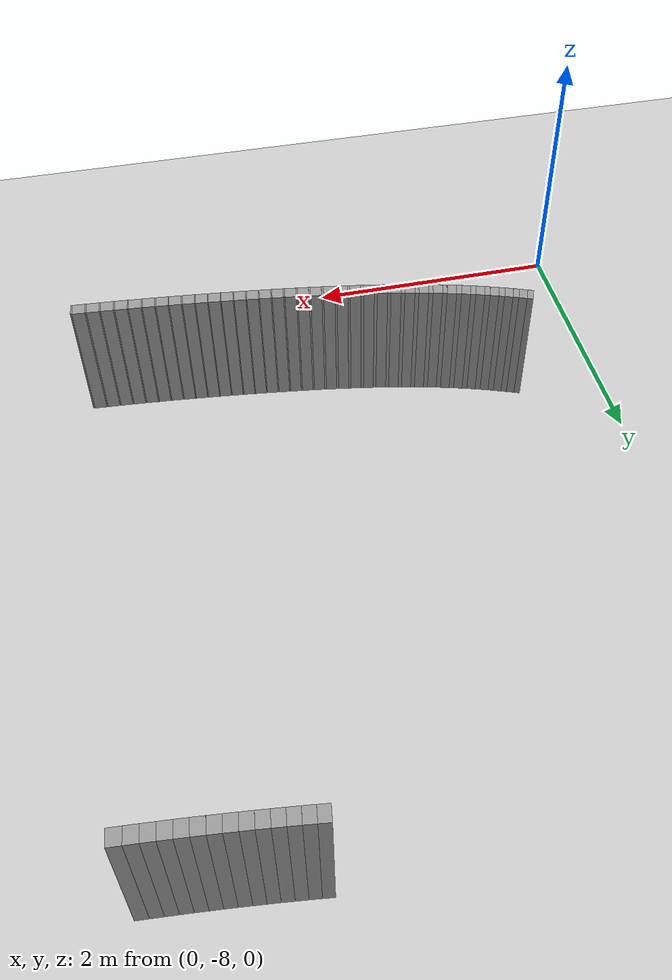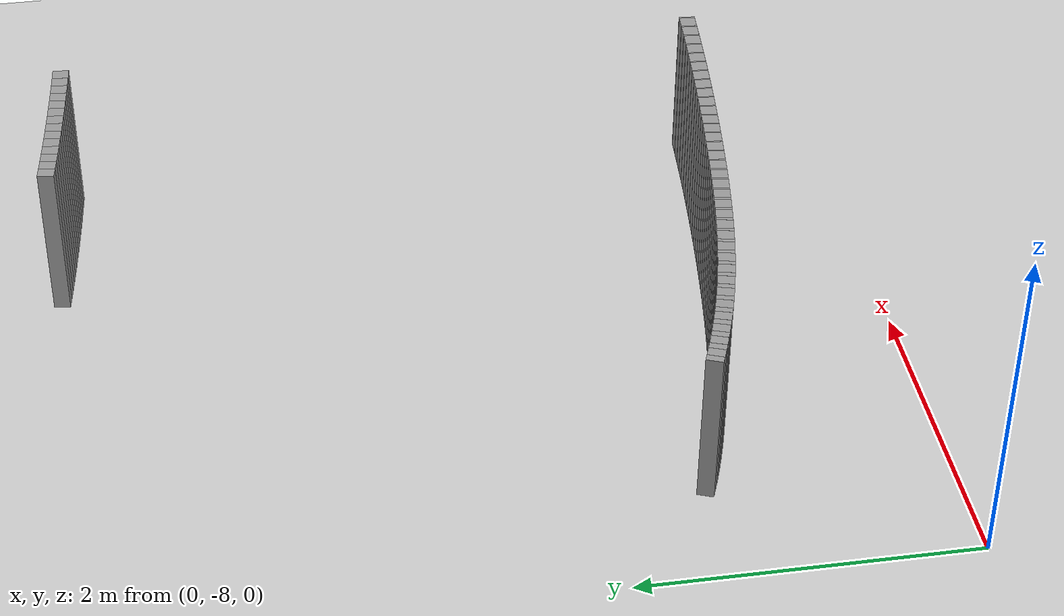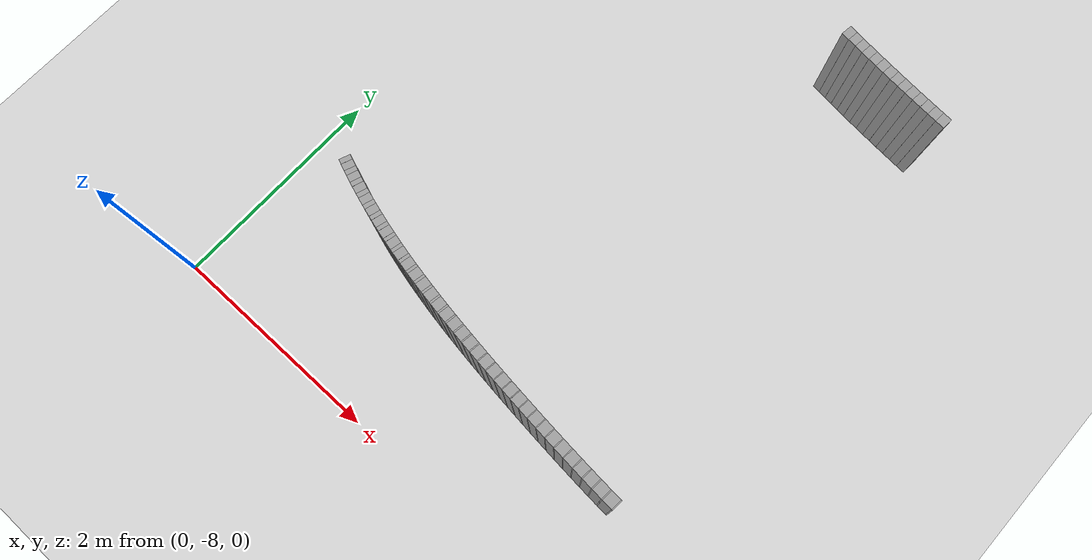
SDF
<sdf version="1.6">
 <world name="default">
  <include><uri>model://ground_plane</uri></include>
  <include><uri>model://sun</uri></include>
  <model name="wall_653_outward">
   <static>true</static>
   <link name="link">
    <collision name="collision">
     <geometry><box><size>0.010442473071604817 0.1 1.0</size></box></geometry>
    </collision>
    <visual name="visual">
     <geometry><box><size>0.010442473071604817 0.1 1.0</size></box></geometry>
     <material>
      <script><uri>file://media/materials/scripts/gazebo.material</uri><name>Gazebo/Gray</name></script>
     </material>
    </visual>
   </link>
   <pose>4.032838041866901 -7.122460427652382 0.5 0 0 3.0793379252012874</pose>
  </model>
  <model name="wall_654_outward">
   <static>true</static>
   <link name="link">
    <collision name="collision">
     <geometry><box><size>0.09457384258236233 0.1 1.0</size></box></geometry>
    </collision>
    <visual name="visual">
     <geometry><box><size>0.09457384258236233 0.1 1.0</size></box></geometry>
     <material>
      <script><uri>file://media/materials/scripts/gazebo.material</uri><name>Gazebo/Gray</name></script>
     </material>
    </visual>
   </link>
   <pose>3.9804394439247313 -7.119070458714933 0.5 0 0 3.0767273039680267</pose>
  </model>
  <model name="wall_655_outward">
   <static>true</static>
   <link name="link">
    <collision name="collision">
     <geometry><box><size>0.01002110656295349 0.1 1.0</size></box></geometry>
    </collision>
    <visual name="visual">
     <geometry><box><size>0.01002110656295349 0.1 1.0</size></box></geometry>
     <material>
      <script><uri>file://media/materials/scripts/gazebo.material</uri><name>Gazebo/Gray</name></script>
     </material>
    </visual>
   </link>
   <pose>3.928252781311886 -7.1156680176918385 0.5 0 0 3.0742220247066396</pose>
  </model>
  <model name="wall_656_outward">
   <static>true</static>
   <link name="link">
    <collision name="collision">
     <geometry><box><size>0.09392158900422469 0.1 1.0</size></box></geometry>
    </collision>
    <visual name="visual">
     <geometry><box><size>0.09392158900422469 0.1 1.0</size></box></geometry>
     <material>
      <script><uri>file://media/materials/scripts/gazebo.material</uri><name>Gazebo/Gray</name></script>
     </material>
    </visual>
   </link>
   <pose>3.876407399927721 -7.112051950389624 0.5 0 0 3.0717167454451535</pose>
  </model>
  <model name="wall_657_outward">
   <static>true</static>
   <link name="link">
    <collision name="collision">
     <geometry><box><size>0.009635117961015629 0.1 1.0</size></box></geometry>
    </collision>
    <visual name="visual">
     <geometry><box><size>0.009635117961015629 0.1 1.0</size></box></geometry>
     <material>
      <script><uri>file://media/materials/scripts/gazebo.material</uri><name>Gazebo/Gray</name></script>
     </material>
    </visual>
   </link>
   <pose>3.824756226768604 -7.108425259338109 0.5 0 0 3.0693079636255254</pose>
  </model>
  <model name="wall_658_outward">
   <static>true</static>
   <link name="link">
    <collision name="collision">
     <geometry><box><size>0.09324955963267284 0.1 1.0</size></box></geometry>
    </collision>
    <visual name="visual">
     <geometry><box><size>0.09324955963267284 0.1 1.0</size></box></geometry>
     <material>
      <script><uri>file://media/materials/scripts/gazebo.material</uri><name>Gazebo/Gray</name></script>
     </material>
    </visual>
   </link>
   <pose>3.77345647058897 -7.104597997455654 0.5 0 0 3.066899181805878</pose>
  </model>
  <model name="wall_659_outward">
   <static>true</static>
   <link name="link">
    <collision name="collision">
     <geometry><box><size>0.0092740077601503 0.1 1.0</size></box></geometry>
    </collision>
    <visual name="visual">
     <geometry><box><size>0.0092740077601503 0.1 1.0</size></box></geometry>
     <material>
      <script><uri>file://media/materials/scripts/gazebo.material</uri><name>Gazebo/Gray</name></script>
     </material>
    </visual>
   </link>
   <pose>3.7223384328117346 -7.100761916203569 0.5 0 0 3.0645806777886158</pose>
  </model>
  <model name="wall_660_outward">
   <static>true</static>
   <link name="link">
    <collision name="collision">
     <geometry><box><size>0.09255938303456822 0.1 1.0</size></box></geometry>
    </collision>
    <visual name="visual">
     <geometry><box><size>0.09255938303456822 0.1 1.0</size></box></geometry>
     <material>
      <script><uri>file://media/materials/scripts/gazebo.material</uri><name>Gazebo/Gray</name></script>
     </material>
    </visual>
   </link>
   <pose>3.671581031507449 -7.096737623786938 0.5 0 0 3.0622621737714617</pose>
  </model>
  <model name="wall_661_outward">
   <static>true</static>
   <link name="link">
    <collision name="collision">
     <geometry><box><size>0.008964394861757652 0.1 1.0</size></box></geometry>
    </collision>
    <visual name="visual">
     <geometry><box><size>0.008964394861757652 0.1 1.0</size></box></geometry>
     <material>
      <script><uri>file://media/materials/scripts/gazebo.material</uri><name>Gazebo/Gray</name></script>
     </material>
    </visual>
   </link>
   <pose>3.6209795966036777 -7.092704868721475 0.5 0 0 3.060021073180088</pose>
  </model>
  <model name="wall_662_outward">
   <static>true</static>
   <link name="link">
    <collision name="collision">
     <geometry><box><size>0.0918546644588078 0.1 1.0</size></box></geometry>
    </collision>
    <visual name="visual">
     <geometry><box><size>0.0918546644588078 0.1 1.0</size></box></geometry>
     <material>
      <script><uri>file://media/materials/scripts/gazebo.material</uri><name>Gazebo/Gray</name></script>
     </material>
    </visual>
   </link>
   <pose>3.5707461861454326 -7.088494866299903 0.5 0 0 3.057779972588584</pose>
  </model>
  <model name="wall_663_outward">
   <static>true</static>
   <link name="link">
    <collision name="collision">
     <geometry><box><size>0.00863821326469259 0.1 1.0</size></box></geometry>
    </collision>
    <visual name="visual">
     <geometry><box><size>0.00863821326469259 0.1 1.0</size></box></geometry>
     <material>
      <script><uri>file://media/materials/scripts/gazebo.material</uri><name>Gazebo/Gray</name></script>
     </material>
    </visual>
   </link>
   <pose>3.5206769145711228 -7.084279212472166 0.5 0 0 3.055620417593754</pose>
  </model>
  <model name="wall_664_outward">
   <static>true</static>
   <link name="link">
    <collision name="collision">
     <geometry><box><size>0.09114164450806461 0.1 1.0</size></box></geometry>
    </collision>
    <visual name="visual">
     <geometry><box><size>0.09114164450806461 0.1 1.0</size></box></geometry>
     <material>
      <script><uri>file://media/materials/scripts/gazebo.material</uri><name>Gazebo/Gray</name></script>
     </material>
    </visual>
   </link>
   <pose>3.470979802209799 -7.079897305432452 0.5 0 0 3.0534608625990822</pose>
  </model>
  <model name="wall_665_outward">
   <static>true</static>
   <link name="link">
    <collision name="collision">
     <geometry><box><size>0.008350675729254823 0.1 1.0</size></box></geometry>
    </collision>
    <visual name="visual">
     <geometry><box><size>0.008350675729254823 0.1 1.0</size></box></geometry>
     <material>
      <script><uri>file://media/materials/scripts/gazebo.material</uri><name>Gazebo/Gray</name></script>
     </material>
    </visual>
   </link>
   <pose>3.4214274878652002 -7.075510078476449 0.5 0 0 3.0513731921503187</pose>
  </model>
  <model name="wall_666_outward">
   <static>true</static>
   <link name="link">
    <collision name="collision">
     <geometry><box><size>0.09043049631183414 0.1 1.0</size></box></geometry>
    </collision>
    <visual name="visual">
     <geometry><box><size>0.09043049631183414 0.1 1.0</size></box></geometry>
     <material>
      <script><uri>file://media/materials/scripts/gazebo.material</uri><name>Gazebo/Gray</name></script>
     </material>
    </visual>
   </link>
   <pose>3.3722463769421203 -7.070966127220861 0.5 0 0 3.0492855217015102</pose>
  </model>
  <model name="wall_667_outward">
   <static>true</static>
   <link name="link">
    <collision name="collision">
     <geometry><box><size>0.00808149350482575 0.1 1.0</size></box></geometry>
    </collision>
    <visual name="visual">
     <geometry><box><size>0.00808149350482575 0.1 1.0</size></box></geometry>
     <material>
      <script><uri>file://media/materials/scripts/gazebo.material</uri><name>Gazebo/Gray</name></script>
     </material>
    </visual>
   </link>
   <pose>3.3232008392735195 -7.066417773295749 0.5 0 0 3.047265146950805</pose>
  </model>
  <model name="wall_668_outward">
   <static>true</static>
   <link name="link">
    <collision name="collision">
     <geometry><box><size>0.08973105101015012 0.1 1.0</size></box></geometry>
    </collision>
    <visual name="visual">
     <geometry><box><size>0.08973105101015012 0.1 1.0</size></box></geometry>
     <material>
      <script><uri>file://media/materials/scripts/gazebo.material</uri><name>Gazebo/Gray</name></script>
     </material>
    </visual>
   </link>
   <pose>3.2745206106957854 -7.061721171148216 0.5 0 0 3.0452447722000997</pose>
  </model>
  <model name="wall_669_outward">
   <static>true</static>
   <link name="link">
    <collision name="collision">
     <geometry><box><size>0.007814410871649536 0.1 1.0</size></box></geometry>
    </collision>
    <visual name="visual">
     <geometry><box><size>0.007814410871649536 0.1 1.0</size></box></geometry>
     <material>
      <script><uri>file://media/materials/scripts/gazebo.material</uri><name>Gazebo/Gray</name></script>
     </material>
    </visual>
   </link>
   <pose>3.225974822948856 -7.057021691770269 0.5 0 0 3.0432911682394943</pose>
  </model>
  <model name="wall_670_outward">
   <static>true</static>
   <link name="link">
    <collision name="collision">
     <geometry><box><size>0.08905357893375238 0.1 1.0</size></box></geometry>
    </collision>
    <visual name="visual">
     <geometry><box><size>0.08905357893375238 0.1 1.0</size></box></geometry>
     <material>
      <script><uri>file://media/materials/scripts/gazebo.material</uri><name>Gazebo/Gray</name></script>
     </material>
    </visual>
   </link>
   <pose>3.1777832747289194 -7.052181663008795 0.5 0 0 3.0413375642789204</pose>
  </model>
  <model name="wall_671_outward">
   <static>true</static>
   <link name="link">
    <collision name="collision">
     <geometry><box><size>0.0075883823760114774 0.1 1.0</size></box></geometry>
    </collision>
    <visual name="visual">
     <geometry><box><size>0.0075883823760114774 0.1 1.0</size></box></geometry>
     <material>
      <script><uri>file://media/materials/scripts/gazebo.material</uri><name>Gazebo/Gray</name></script>
     </material>
    </visual>
   </link>
   <pose>3.1297056570500126 -7.047338188868451 0.5 0 0 3.039440467546942</pose>
  </model>
  <model name="wall_672_outward">
   <static>true</static>
   <link name="link">
    <collision name="collision">
     <geometry><box><size>0.08840876499954922 0.1 1.0</size></box></geometry>
    </collision>
    <visual name="visual">
     <geometry><box><size>0.08840876499954922 0.1 1.0</size></box></geometry>
     <material>
      <script><uri>file://media/materials/scripts/gazebo.material</uri><name>Gazebo/Gray</name></script>
     </material>
    </visual>
   </link>
   <pose>3.081965930595816 -7.0423601379928495 0.5 0 0 3.0375433708150466</pose>
  </model>
  <model name="wall_673_outward">
   <static>true</static>
   <link name="link">
    <collision name="collision">
     <geometry><box><size>0.007422838619146693 0.1 1.0</size></box></geometry>
    </collision>
    <visual name="visual">
     <geometry><box><size>0.007422838619146693 0.1 1.0</size></box></geometry>
     <material>
      <script><uri>file://media/materials/scripts/gazebo.material</uri><name>Gazebo/Gray</name></script>
     </material>
    </visual>
   </link>
   <pose>3.034309990852888 -7.0373766748114175 0.5 0 0 3.0356876600951974</pose>
  </model>
  <model name="wall_674_outward">
   <static>true</static>
   <link name="link">
    <collision name="collision">
     <geometry><box><size>0.08780325307423642 0.1 1.0</size></box></geometry>
    </collision>
    <visual name="visual">
     <geometry><box><size>0.08780325307423642 0.1 1.0</size></box></geometry>
     <material>
      <script><uri>file://media/materials/scripts/gazebo.material</uri><name>Gazebo/Gray</name></script>
     </material>
    </visual>
   </link>
   <pose>2.9869723933341588 -7.032262631904586 0.5 0 0 3.0338319493753367</pose>
  </model>
  <model name="wall_675_outward">
   <static>true</static>
   <link name="link">
    <collision name="collision">
     <geometry><box><size>0.0073814233192602205 0.1 1.0</size></box></geometry>
    </collision>
    <visual name="visual">
     <geometry><box><size>0.0073814233192602205 0.1 1.0</size></box></geometry>
     <material>
      <script><uri>file://media/materials/scripts/gazebo.material</uri><name>Gazebo/Gray</name></script>
     </material>
    </visual>
   </link>
   <pose>2.9396568564936594 -7.027137197604203 0.5 0 0 3.031986592498095</pose>
  </model>
  <model name="wall_676_outward">
   <static>true</static>
   <link name="link">
    <collision name="collision">
     <geometry><box><size>0.08724009224771391 0.1 1.0</size></box></geometry>
    </collision>
    <visual name="visual">
     <geometry><box><size>0.08724009224771391 0.1 1.0</size></box></geometry>
     <material>
      <script><uri>file://media/materials/scripts/gazebo.material</uri><name>Gazebo/Gray</name></script>
     </material>
    </visual>
   </link>
   <pose>2.8926388768024 -7.021882024954554 0.5 0 0 3.030141235621006</pose>
  </model>
  <model name="wall_677_outward">
   <static>true</static>
   <link name="link">
    <collision name="collision">
     <geometry><box><size>0.007449028712975078 0.1 1.0</size></box></geometry>
    </collision>
    <visual name="visual">
     <geometry><box><size>0.007449028712975078 0.1 1.0</size></box></geometry>
     <material>
      <script><uri>file://media/materials/scripts/gazebo.material</uri><name>Gazebo/Gray</name></script>
     </material>
    </visual>
   </link>
   <pose>2.845588833226106 -7.016609431368691 0.5 0 0 3.028278977366409</pose>
  </model>
  <model name="wall_678_outward">
   <static>true</static>
   <link name="link">
    <collision name="collision">
     <geometry><box><size>0.08671592079062432 0.1 1.0</size></box></geometry>
    </collision>
    <visual name="visual">
     <geometry><box><size>0.08671592079062432 0.1 1.0</size></box></geometry>
     <material>
      <script><uri>file://media/materials/scripts/gazebo.material</uri><name>Gazebo/Gray</name></script>
     </material>
    </visual>
   </link>
   <pose>2.798817508915022 -7.01120553546829 0.5 0 0 3.026416719111745</pose>
  </model>
  <model name="wall_679_outward">
   <static>true</static>
   <link name="link">
    <collision name="collision">
     <geometry><box><size>0.007728097455072583 0.1 1.0</size></box></geometry>
    </collision>
    <visual name="visual">
     <geometry><box><size>0.007728097455072583 0.1 1.0</size></box></geometry>
     <material>
      <script><uri>file://media/materials/scripts/gazebo.material</uri><name>Gazebo/Gray</name></script>
     </material>
    </visual>
   </link>
   <pose>2.7519092304894404 -7.005771298136658 0.5 0 0 3.0244846935459777</pose>
  </model>
  <model name="wall_680_outward">
   <static>true</static>
   <link name="link">
    <collision name="collision">
     <geometry><box><size>0.08622376809790168 0.1 1.0</size></box></geometry>
    </collision>
    <visual name="visual">
     <geometry><box><size>0.08622376809790168 0.1 1.0</size></box></geometry>
     <material>
      <script><uri>file://media/materials/scripts/gazebo.material</uri><name>Gazebo/Gray</name></script>
     </material>
    </visual>
   </link>
   <pose>2.7052648620867563 -7.000199894838117 0.5 0 0 3.0225526679803045</pose>
  </model>
  <model name="wall_681_outward">
   <static>true</static>
   <link name="link">
    <collision name="collision">
     <geometry><box><size>0.008186937953801808 0.1 1.0</size></box></geometry>
    </collision>
    <visual name="visual">
     <geometry><box><size>0.008186937953801808 0.1 1.0</size></box></geometry>
     <material>
      <script><uri>file://media/materials/scripts/gazebo.material</uri><name>Gazebo/Gray</name></script>
     </material>
    </visual>
   </link>
   <pose>2.6583945799509863 -6.99458551441607 0.5 0 0 3.0205059320628345</pose>
  </model>
  <model name="wall_682_outward">
   <static>true</static>
   <link name="link">
    <collision name="collision">
     <geometry><box><size>0.0857474702592192 0.1 1.0</size></box></geometry>
    </collision>
    <visual name="visual">
     <geometry><box><size>0.0857474702592192 0.1 1.0</size></box></geometry>
     <material>
      <script><uri>file://media/materials/scripts/gazebo.material</uri><name>Gazebo/Gray</name></script>
     </material>
    </visual>
   </link>
   <pose>2.611781960485784 -6.988825199062417 0.5 0 0 3.0184591961453906</pose>
  </model>
  <model name="wall_683_outward">
   <static>true</static>
   <link name="link">
    <collision name="collision">
     <geometry><box><size>0.008891362308807455 0.1 1.0</size></box></geometry>
    </collision>
    <visual name="visual">
     <geometry><box><size>0.008891362308807455 0.1 1.0</size></box></geometry>
     <material>
      <script><uri>file://media/materials/scripts/gazebo.material</uri><name>Gazebo/Gray</name></script>
     </material>
    </visual>
   </link>
   <pose>2.5648220407303084 -6.983003502381481 0.5 0 0 3.0162363537376726</pose>
  </model>
  <model name="wall_684_outward">
   <static>true</static>
   <link name="link">
    <collision name="collision">
     <geometry><box><size>0.08527006249945727 0.1 1.0</size></box></geometry>
    </collision>
    <visual name="visual">
     <geometry><box><size>0.08527006249945727 0.1 1.0</size></box></geometry>
     <material>
      <script><uri>file://media/materials/scripts/gazebo.material</uri><name>Gazebo/Gray</name></script>
     </material>
    </visual>
   </link>
   <pose>2.5181227156169883 -6.977023069461514 0.5 0 0 3.0140135113299453</pose>
  </model>
  <model name="wall_685_outward">
   <static>true</static>
   <link name="link">
    <collision name="collision">
     <geometry><box><size>0.009847370159780173 0.1 1.0</size></box></geometry>
    </collision>
    <visual name="visual">
     <geometry><box><size>0.009847370159780173 0.1 1.0</size></box></geometry>
     <material>
      <script><uri>file://media/materials/scripts/gazebo.material</uri><name>Gazebo/Gray</name></script>
     </material>
    </visual>
   </link>
   <pose>2.470952074873609 -6.970959994456716 0.5 0 0 3.0115516663033213</pose>
  </model>
  <model name="wall_686_outward">
   <static>true</static>
   <link name="link">
    <collision name="collision">
     <geometry><box><size>0.08476732597819724 0.1 1.0</size></box></geometry>
    </collision>
    <visual name="visual">
     <geometry><box><size>0.08476732597819724 0.1 1.0</size></box></geometry>
     <material>
      <script><uri>file://media/materials/scripts/gazebo.material</uri><name>Gazebo/Gray</name></script>
     </material>
    </visual>
   </link>
   <pose>2.4240578205020262 -6.964721980070039 0.5 0 0 3.009089821276571</pose>
  </model>
  <model name="wall_687_outward">
   <static>true</static>
   <link name="link">
    <collision name="collision">
     <geometry><box><size>0.011056584605757895 0.1 1.0</size></box></geometry>
    </collision>
    <visual name="visual">
     <geometry><box><size>0.011056584605757895 0.1 1.0</size></box></geometry>
     <material>
      <script><uri>file://media/materials/scripts/gazebo.material</uri><name>Gazebo/Gray</name></script>
     </material>
    </visual>
   </link>
   <pose>2.3765678851091323 -6.9583769264032185 0.5 0 0 3.0063256716052096</pose>
  </model>
  <model name="wall_688_outward">
   <static>true</static>
   <link name="link">
    <collision name="collision">
     <geometry><box><size>0.08421311848578238 0.1 1.0</size></box></geometry>
    </collision>
    <visual name="visual">
     <geometry><box><size>0.08421311848578238 0.1 1.0</size></box></geometry>
     <material>
      <script><uri>file://media/materials/scripts/gazebo.material</uri><name>Gazebo/Gray</name></script>
     </material>
    </visual>
   </link>
   <pose>2.3293840156231367 -6.951837831391194 0.5 0 0 3.0035615219338445</pose>
  </model>
  <model name="wall_689_outward">
   <static>true</static>
   <link name="link">
    <collision name="collision">
     <geometry><box><size>0.012506841971058903 0.1 1.0</size></box></geometry>
    </collision>
    <visual name="visual">
     <geometry><box><size>0.012506841971058903 0.1 1.0</size></box></geometry>
     <material>
      <script><uri>file://media/materials/scripts/gazebo.material</uri><name>Gazebo/Gray</name></script>
     </material>
    </visual>
   </link>
   <pose>2.281486716517284 -6.945164462538162 0.5 0 0 3.000434806346381</pose>
  </model>
  <model name="wall_690_outward">
   <static>true</static>
   <link name="link">
    <collision name="collision">
     <geometry><box><size>0.08358217471317969 0.1 1.0</size></box></geometry>
    </collision>
    <visual name="visual">
     <geometry><box><size>0.08358217471317969 0.1 1.0</size></box></geometry>
     <material>
      <script><uri>file://media/materials/scripts/gazebo.material</uri><name>Gazebo/Gray</name></script>
     </material>
    </visual>
   </link>
   <pose>2.2339386562066554 -6.9382757625439515 0.5 0 0 2.997308090759042</pose>
  </model>
  <model name="wall_691_outward">
   <static>true</static>
   <link name="link">
    <collision name="collision">
     <geometry><box><size>0.014186319855319296 0.1 1.0</size></box></geometry>
    </collision>
    <visual name="visual">
     <geometry><box><size>0.014186319855319296 0.1 1.0</size></box></geometry>
     <material>
      <script><uri>file://media/materials/scripts/gazebo.material</uri><name>Gazebo/Gray</name></script>
     </material>
    </visual>
   </link>
   <pose>2.1855660250273328 -6.931222078630584 0.5 0 0 2.9937615033601856</pose>
  </model>
  <model name="wall_692_outward">
   <static>true</static>
   <link name="link">
    <collision name="collision">
     <geometry><box><size>0.08284945290775893 0.1 1.0</size></box></geometry>
    </collision>
    <visual name="visual">
     <geometry><box><size>0.08284945290775893 0.1 1.0</size></box></geometry>
     <material>
      <script><uri>file://media/materials/scripts/gazebo.material</uri><name>Gazebo/Gray</name></script>
     </material>
    </visual>
   </link>
   <pose>2.137599227416716 -6.923930444382112 0.5 0 0 2.990214915961378</pose>
  </model>
  <model name="wall_693_outward">
   <static>true</static>
   <link name="link">
    <collision name="collision">
     <geometry><box><size>0.01607227541756918 0.1 1.0</size></box></geometry>
    </collision>
    <visual name="visual">
     <geometry><box><size>0.01607227541756918 0.1 1.0</size></box></geometry>
     <material>
      <script><uri>file://media/materials/scripts/gazebo.material</uri><name>Gazebo/Gray</name></script>
     </material>
    </visual>
   </link>
   <pose>2.088708918613996 -6.916439822623894 0.5 0 0 2.986196836295065</pose>
  </model>
  <model name="wall_694_outward">
   <static>true</static>
   <link name="link">
    <collision name="collision">
     <geometry><box><size>0.08199376012825221 0.1 1.0</size></box></geometry>
    </collision>
    <visual name="visual">
     <geometry><box><size>0.08199376012825221 0.1 1.0</size></box></geometry>
     <material>
      <script><uri>file://media/materials/scripts/gazebo.material</uri><name>Gazebo/Gray</name></script>
     </material>
    </visual>
   </link>
   <pose>2.040292553833828 -6.908688233474896 0.5 0 0 2.982178756628704</pose>
  </model>
  <model name="wall_695_outward">
   <static>true</static>
   <link name="link">
    <collision name="collision">
     <geometry><box><size>0.018139371977615438 0.1 1.0</size></box></geometry>
    </collision>
    <visual name="visual">
     <geometry><box><size>0.018139371977615438 0.1 1.0</size></box></geometry>
     <material>
      <script><uri>file://media/materials/scripts/gazebo.material</uri><name>Gazebo/Gray</name></script>
     </material>
    </visual>
   </link>
   <pose>1.9908674282424101 -6.900700095395209 0.5 0 0 2.9776438980911553</pose>
  </model>
  <model name="wall_696_outward">
   <static>true</static>
   <link name="link">
    <collision name="collision">
     <geometry><box><size>0.08099918997314125 0.1 1.0</size></box></geometry>
    </collision>
    <visual name="visual">
     <geometry><box><size>0.08099918997314125 0.1 1.0</size></box></geometry>
     <material>
      <script><uri>file://media/materials/scripts/gazebo.material</uri><name>Gazebo/Gray</name></script>
     </material>
    </visual>
   </link>
   <pose>1.9419932344050583 -6.892428503088279 0.5 0 0 2.973109039553561</pose>
  </model>
  <model name="wall_697_outward">
   <static>true</static>
   <link name="link">
    <collision name="collision">
     <geometry><box><size>0.020367163637435945 0.1 1.0</size></box></geometry>
    </collision>
    <visual name="visual">
     <geometry><box><size>0.020367163637435945 0.1 1.0</size></box></geometry>
     <material>
      <script><uri>file://media/materials/scripts/gazebo.material</uri><name>Gazebo/Gray</name></script>
     </material>
    </visual>
   </link>
   <pose>1.8920365474844054 -6.883878465071046 0.5 0 0 2.968017226642029</pose>
  </model>
  <model name="wall_698_outward">
   <static>true</static>
   <link name="link">
    <collision name="collision">
     <geometry><box><size>0.07985759599289416 0.1 1.0</size></box></geometry>
    </collision>
    <visual name="visual">
     <geometry><box><size>0.07985759599289416 0.1 1.0</size></box></geometry>
     <material>
      <script><uri>file://media/materials/scripts/gazebo.material</uri><name>Gazebo/Gray</name></script>
     </material>
    </visual>
   </link>
   <pose>1.842712800223481 -6.875023634485855 0.5 0 0 2.9629254137305043</pose>
  </model>
  <model name="wall_699_outward">
   <static>true</static>
   <link name="link">
    <collision name="collision">
     <geometry><box><size>0.02271219170996822 0.1 1.0</size></box></geometry>
    </collision>
    <visual name="visual">
     <geometry><box><size>0.02271219170996822 0.1 1.0</size></box></geometry>
     <material>
      <script><uri>file://media/materials/scripts/gazebo.material</uri><name>Gazebo/Gray</name></script>
     </material>
    </visual>
   </link>
   <pose>1.7922559284322248 -6.86584595463639 0.5 0 0 2.9572473352922977</pose>
  </model>
  <model name="wall_700_outward">
   <static>true</static>
   <link name="link">
    <collision name="collision">
     <geometry><box><size>0.07856784290625185 0.1 1.0</size></box></geometry>
    </collision>
    <visual name="visual">
     <geometry><box><size>0.07856784290625185 0.1 1.0</size></box></geometry>
     <material>
      <script><uri>file://media/materials/scripts/gazebo.material</uri><name>Gazebo/Gray</name></script>
     </material>
    </visual>
   </link>
   <pose>1.742515441323595 -6.85634432781284 0.5 0 0 2.9515692568541145</pose>
  </model>
  <model name="wall_701_outward">
   <static>true</static>
   <link name="link">
    <collision name="collision">
     <geometry><box><size>0.02513546983631733 0.1 1.0</size></box></geometry>
    </collision>
    <visual name="visual">
     <geometry><box><size>0.02513546983631733 0.1 1.0</size></box></geometry>
     <material>
      <script><uri>file://media/materials/scripts/gazebo.material</uri><name>Gazebo/Gray</name></script>
     </material>
    </visual>
   </link>
   <pose>1.691612284719226 -6.846472984396366 0.5 0 0 2.9452853480391328</pose>
  </model>
  <model name="wall_702_outward">
   <static>true</static>
   <link name="link">
    <collision name="collision">
     <geometry><box><size>0.07713554896072333 0.1 1.0</size></box></geometry>
    </collision>
    <visual name="visual">
     <geometry><box><size>0.07713554896072333 0.1 1.0</size></box></geometry>
     <material>
      <script><uri>file://media/materials/scripts/gazebo.material</uri><name>Gazebo/Gray</name></script>
     </material>
    </visual>
   </link>
   <pose>1.641506926377209 -6.836261508158653 0.5 0 0 2.9390014392241484</pose>
  </model>
  <model name="wall_703_outward">
   <static>true</static>
   <link name="link">
    <collision name="collision">
     <geometry><box><size>0.02764324217999111 0.1 1.0</size></box></geometry>
    </collision>
    <visual name="visual">
     <geometry><box><size>0.02764324217999111 0.1 1.0</size></box></geometry>
     <material>
      <script><uri>file://media/materials/scripts/gazebo.material</uri><name>Gazebo/Gray</name></script>
     </material>
    </visual>
   </link>
   <pose>1.5902085153183427 -6.825626832246925 0.5 0 0 2.9320905736687157</pose>
  </model>
  <model name="wall_704_outward">
   <static>true</static>
   <link name="link">
    <collision name="collision">
     <geometry><box><size>0.07557600168136634 0.1 1.0</size></box></geometry>
    </collision>
    <visual name="visual">
     <geometry><box><size>0.07557600168136634 0.1 1.0</size></box></geometry>
     <material>
      <script><uri>file://media/materials/scripts/gazebo.material</uri><name>Gazebo/Gray</name></script>
     </material>
    </visual>
   </link>
   <pose>1.5397825528128013 -6.814638181890981 0.5 0 0 2.9251797081132915</pose>
  </model>
  <model name="wall_705_outward">
   <static>true</static>
   <link name="link">
    <collision name="collision">
     <geometry><box><size>0.030144198435219222 0.1 1.0</size></box></geometry>
    </collision>
    <visual name="visual">
     <geometry><box><size>0.030144198435219222 0.1 1.0</size></box></geometry>
     <material>
      <script><uri>file://media/materials/scripts/gazebo.material</uri><name>Gazebo/Gray</name></script>
     </material>
    </visual>
   </link>
   <pose>1.4881802766442167 -6.803176815203775 0.5 0 0 2.9176435871713746</pose>
  </model>
  <model name="wall_706_outward">
   <static>true</static>
   <link name="link">
    <collision name="collision">
     <geometry><box><size>0.07391020946208124 0.1 1.0</size></box></geometry>
    </collision>
    <visual name="visual">
     <geometry><box><size>0.07391020946208124 0.1 1.0</size></box></geometry>
     <material>
      <script><uri>file://media/materials/scripts/gazebo.material</uri><name>Gazebo/Gray</name></script>
     </material>
    </visual>
   </link>
   <pose>1.4375151659886518 -6.791351212476338 0.5 0 0 2.910107466229483</pose>
  </model>
  <model name="wall_707_outward">
   <static>true</static>
   <link name="link">
    <collision name="collision">
     <geometry><box><size>0.03261973655045599 0.1 1.0</size></box></geometry>
    </collision>
    <visual name="visual">
     <geometry><box><size>0.03261973655045599 0.1 1.0</size></box></geometry>
     <material>
      <script><uri>file://media/materials/scripts/gazebo.material</uri><name>Gazebo/Gray</name></script>
     </material>
    </visual>
   </link>
   <pose>1.3857019864149125 -6.779001650231635 0.5 0 0 2.901952441701305</pose>
  </model>
  <model name="wall_708_outward">
   <static>true</static>
   <link name="link">
    <collision name="collision">
     <geometry><box><size>0.07216457222702731 0.1 1.0</size></box></geometry>
    </collision>
    <visual name="visual">
     <geometry><box><size>0.07216457222702731 0.1 1.0</size></box></geometry>
     <material>
      <script><uri>file://media/materials/scripts/gazebo.material</uri><name>Gazebo/Gray</name></script>
     </material>
    </visual>
   </link>
   <pose>1.3348780262209312 -6.766280652855862 0.5 0 0 2.8937974171731176</pose>
  </model>
  <model name="wall_709_outward">
   <static>true</static>
   <link name="link">
    <collision name="collision">
     <geometry><box><size>0.03500077099886874 0.1 1.0</size></box></geometry>
    </collision>
    <visual name="visual">
     <geometry><box><size>0.03500077099886874 0.1 1.0</size></box></geometry>
     <material>
      <script><uri>file://media/materials/scripts/gazebo.material</uri><name>Gazebo/Gray</name></script>
     </material>
    </visual>
   </link>
   <pose>1.2829702164217602 -6.752990294309602 0.5 0 0 2.885047112758527</pose>
  </model>
  <model name="wall_710_outward">
   <static>true</static>
   <link name="link">
    <collision name="collision">
     <geometry><box><size>0.0703672879394116 0.1 1.0</size></box></geometry>
    </collision>
    <visual name="visual">
     <geometry><box><size>0.0703672879394116 0.1 1.0</size></box></geometry>
     <material>
      <script><uri>file://media/materials/scripts/gazebo.material</uri><name>Gazebo/Gray</name></script>
     </material>
    </visual>
   </link>
   <pose>1.232089835287498 -6.7393247671652095 0.5 0 0 2.8762968083439504</pose>
  </model>
  <model name="wall_711_outward">
   <static>true</static>
   <link name="link">
    <collision name="collision">
     <geometry><box><size>0.03725128857432373 0.1 1.0</size></box></geometry>
    </collision>
    <visual name="visual">
     <geometry><box><size>0.03725128857432373 0.1 1.0</size></box></geometry>
     <material>
      <script><uri>file://media/materials/scripts/gazebo.material</uri><name>Gazebo/Gray</name></script>
     </material>
    </visual>
   </link>
   <pose>1.180209325426832 -6.725049075825633 0.5 0 0 2.8669838515803256</pose>
  </model>
  <model name="wall_712_outward">
   <static>true</static>
   <link name="link">
    <collision name="collision">
     <geometry><box><size>0.06854987802838716 0.1 1.0</size></box></geometry>
    </collision>
    <visual name="visual">
     <geometry><box><size>0.06854987802838716 0.1 1.0</size></box></geometry>
     <material>
      <script><uri>file://media/materials/scripts/gazebo.material</uri><name>Gazebo/Gray</name></script>
     </material>
    </visual>
   </link>
   <pose>1.1293788427032245 -6.7103971690706565 0.5 0 0 2.8576708948167515</pose>
  </model>
  <model name="wall_713_outward">
   <static>true</static>
   <link name="link">
    <collision name="collision">
     <geometry><box><size>0.03929303305784504 0.1 1.0</size></box></geometry>
    </collision>
    <visual name="visual">
     <geometry><box><size>0.03929303305784504 0.1 1.0</size></box></geometry>
     <material>
      <script><uri>file://media/materials/scripts/gazebo.material</uri><name>Gazebo/Gray</name></script>
     </material>
    </visual>
   </link>
   <pose>1.0776711446736766 -6.695107553256211 0.5 0 0 2.8478474785605985</pose>
  </model>
  <model name="wall_714_outward">
   <static>true</static>
   <link name="link">
    <collision name="collision">
     <geometry><box><size>0.06674051853724301 0.1 1.0</size></box></geometry>
    </collision>
    <visual name="visual">
     <geometry><box><size>0.06674051853724301 0.1 1.0</size></box></geometry>
     <material>
      <script><uri>file://media/materials/scripts/gazebo.material</uri><name>Gazebo/Gray</name></script>
     </material>
    </visual>
   </link>
   <pose>1.0270217313350458 -6.67944383150979 0.5 0 0 2.8380240623044117</pose>
  </model>
  <model name="wall_715_outward">
   <static>true</static>
   <link name="link">
    <collision name="collision">
     <geometry><box><size>0.04112356711142242 0.1 1.0</size></box></geometry>
    </collision>
    <visual name="visual">
     <geometry><box><size>0.04112356711142242 0.1 1.0</size></box></geometry>
     <material>
      <script><uri>file://media/materials/scripts/gazebo.material</uri><name>Gazebo/Gray</name></script>
     </material>
    </visual>
   </link>
   <pose>0.9756199154035672 -6.663120656689804 0.5 0 0 2.8277429894084727</pose>
  </model>
  <model name="wall_716_outward">
   <static>true</static>
   <link name="link">
    <collision name="collision">
     <geometry><box><size>0.06496616691059841 0.1 1.0</size></box></geometry>
    </collision>
    <visual name="visual">
     <geometry><box><size>0.06496616691059841 0.1 1.0</size></box></geometry>
     <material>
      <script><uri>file://media/materials/scripts/gazebo.material</uri><name>Gazebo/Gray</name></script>
     </material>
    </visual>
   </link>
   <pose>0.9252709088030471 -6.646427398985857 0.5 0 0 2.8174619165125705</pose>
  </model>
  <model name="wall_717_outward">
   <static>true</static>
   <link name="link">
    <collision name="collision">
     <geometry><box><size>0.04269432952041096 0.1 1.0</size></box></geometry>
    </collision>
    <visual name="visual">
     <geometry><box><size>0.04269432952041096 0.1 1.0</size></box></geometry>
     <material>
      <script><uri>file://media/materials/scripts/gazebo.material</uri><name>Gazebo/Gray</name></script>
     </material>
    </visual>
   </link>
   <pose>0.8743174326739994 -6.629067678575147 0.5 0 0 2.806788131456797</pose>
  </model>
  <model name="wall_718_outward">
   <static>true</static>
   <link name="link">
    <collision name="collision">
     <geometry><box><size>0.06324919415047064 0.1 1.0</size></box></geometry>
    </collision>
    <visual name="visual">
     <geometry><box><size>0.06324919415047064 0.1 1.0</size></box></geometry>
     <material>
      <script><uri>file://media/materials/scripts/gazebo.material</uri><name>Gazebo/Gray</name></script>
     </material>
    </visual>
   </link>
   <pose>0.8243995657109804 -6.6113437626103915 0.5 0 0 2.796114346401009</pose>
  </model>
  <model name="wall_719_outward">
   <static>true</static>
   <link name="link">
    <collision name="collision">
     <geometry><box><size>0.0440323565682845 0.1 1.0</size></box></geometry>
    </collision>
    <visual name="visual">
     <geometry><box><size>0.0440323565682845 0.1 1.0</size></box></geometry>
     <material>
      <script><uri>file://media/materials/scripts/gazebo.material</uri><name>Gazebo/Gray</name></script>
     </material>
    </visual>
   </link>
   <pose>0.7740115598208195 -6.59295090338525 0.5 0 0 2.7851060349237273</pose>
  </model>
  <model name="wall_720_outward">
   <static>true</static>
   <link name="link">
    <collision name="collision">
     <geometry><box><size>0.06160806850910846 0.1 1.0</size></box></geometry>
    </collision>
    <visual name="visual">
     <geometry><box><size>0.06160806850910846 0.1 1.0</size></box></geometry>
     <material>
      <script><uri>file://media/materials/scripts/gazebo.material</uri><name>Gazebo/Gray</name></script>
     </material>
    </visual>
   </link>
   <pose>0.7246323090192842 -6.574200376484741 0.5 0 0 2.7740977234464457</pose>
  </model>
  <model name="wall_721_outward">
   <static>true</static>
   <link name="link">
    <collision name="collision">
     <geometry><box><size>0.04518292235060655 0.1 1.0</size></box></geometry>
    </collision>
    <visual name="visual">
     <geometry><box><size>0.04518292235060655 0.1 1.0</size></box></geometry>
     <material>
      <script><uri>file://media/materials/scripts/gazebo.material</uri><name>Gazebo/Gray</name></script>
     </material>
    </visual>
   </link>
   <pose>0.6748950436302436 -6.5547788789211845 0.5 0 0 2.7628017526346347</pose>
  </model>
  <model name="wall_275_inward">
   <static>true</static>
   <link name="link">
    <collision name="collision">
     <geometry><box><size>0.08344015800440929 0.1 1.0</size></box></geometry>
    </collision>
    <visual name="visual">
     <geometry><box><size>0.08344015800440929 0.1 1.0</size></box></geometry>
     <material>
      <script><uri>file://media/materials/scripts/gazebo.material</uri><name>Gazebo/Gray</name></script>
     </material>
    </visual>
   </link>
   <pose>3.988493060108791 -3.109311540193772 0.5 0 0 3.062262173771458</pose>
  </model>
  <model name="wall_276_inward">
   <static>true</static>
   <link name="link">
    <collision name="collision">
     <geometry><box><size>0.08305333906817627 0.1 1.0</size></box></geometry>
    </collision>
    <visual name="visual">
     <geometry><box><size>0.08305333906817627 0.1 1.0</size></box></geometry>
     <material>
      <script><uri>file://media/materials/scripts/gazebo.material</uri><name>Gazebo/Gray</name></script>
     </material>
    </visual>
   </link>
   <pose>3.905523289792421 -3.102528948542516 0.5 0 0 3.0577799725885826</pose>
  </model>
  <model name="wall_277_inward">
   <static>true</static>
   <link name="link">
    <collision name="collision">
     <geometry><box><size>0.08264718084066477 0.1 1.0</size></box></geometry>
    </collision>
    <visual name="visual">
     <geometry><box><size>0.08264718084066477 0.1 1.0</size></box></geometry>
     <material>
      <script><uri>file://media/materials/scripts/gazebo.material</uri><name>Gazebo/Gray</name></script>
     </material>
    </visual>
   </link>
   <pose>3.8229791785894234 -3.0954153511257454 0.5 0 0 3.0534608625990862</pose>
  </model>
  <model name="wall_278_inward">
   <static>true</static>
   <link name="link">
    <collision name="collision">
     <geometry><box><size>0.08221439434898599 0.1 1.0</size></box></geometry>
    </collision>
    <visual name="visual">
     <geometry><box><size>0.08221439434898599 0.1 1.0</size></box></geometry>
     <material>
      <script><uri>file://media/materials/scripts/gazebo.material</uri><name>Gazebo/Gray</name></script>
     </material>
    </visual>
   </link>
   <pose>3.740883776513268 -3.0879890406477823 0.5 0 0 3.049285521701511</pose>
  </model>
  <model name="wall_279_inward">
   <static>true</static>
   <link name="link">
    <collision name="collision">
     <geometry><box><size>0.08178308311886952 0.1 1.0</size></box></geometry>
    </collision>
    <visual name="visual">
     <geometry><box><size>0.08178308311886952 0.1 1.0</size></box></geometry>
     <material>
      <script><uri>file://media/materials/scripts/gazebo.material</uri><name>Gazebo/Gray</name></script>
     </material>
    </visual>
   </link>
   <pose>3.6592496921522284 -3.0802662187043164 0.5 0 0 3.0452447722000975</pose>
  </model>
  <model name="wall_280_inward">
   <static>true</static>
   <link name="link">
    <collision name="collision">
     <geometry><box><size>0.08135216802629139 0.1 1.0</size></box></geometry>
    </collision>
    <visual name="visual">
     <geometry><box><size>0.08135216802629139 0.1 1.0</size></box></geometry>
     <material>
      <script><uri>file://media/materials/scripts/gazebo.material</uri><name>Gazebo/Gray</name></script>
     </material>
    </visual>
   </link>
   <pose>3.5780759643246345 -3.072261341463485 0.5 0 0 3.041337564278921</pose>
  </model>
  <model name="wall_281_inward">
   <static>true</static>
   <link name="link">
    <collision name="collision">
     <geometry><box><size>0.0809031412836882 0.1 1.0</size></box></geometry>
    </collision>
    <visual name="visual">
     <geometry><box><size>0.0809031412836882 0.1 1.0</size></box></geometry>
     <material>
      <script><uri>file://media/materials/scripts/gazebo.material</uri><name>Gazebo/Gray</name></script>
     </material>
    </visual>
   </link>
   <pose>3.4973713298479243 -3.0639888184721333 0.5 0 0 3.0375433708150417</pose>
  </model>
  <model name="wall_282_inward">
   <static>true</static>
   <link name="link">
    <collision name="collision">
     <geometry><box><size>0.08040110943067541 0.1 1.0</size></box></geometry>
    </collision>
    <visual name="visual">
     <geometry><box><size>0.08040110943067541 0.1 1.0</size></box></geometry>
     <material>
      <script><uri>file://media/materials/scripts/gazebo.material</uri><name>Gazebo/Gray</name></script>
     </material>
    </visual>
   </link>
   <pose>3.417171162544959 -3.0554637912443345 0.5 0 0 3.033831949375331</pose>
  </model>
  <model name="wall_283_inward">
   <static>true</static>
   <link name="link">
    <collision name="collision">
     <geometry><box><size>0.0798248534891024 0.1 1.0</size></box></geometry>
    </collision>
    <visual name="visual">
     <geometry><box><size>0.0798248534891024 0.1 1.0</size></box></geometry>
     <material>
      <script><uri>file://media/materials/scripts/gazebo.material</uri><name>Gazebo/Gray</name></script>
     </material>
    </visual>
   </link>
   <pose>3.3375389951414 -3.046701037252535 0.5 0 0 3.030141235621003</pose>
  </model>
  <model name="wall_284_inward">
   <static>true</static>
   <link name="link">
    <collision name="collision">
     <geometry><box><size>0.07912734403670846 0.1 1.0</size></box></geometry>
    </collision>
    <visual name="visual">
     <geometry><box><size>0.07912734403670846 0.1 1.0</size></box></geometry>
     <material>
      <script><uri>file://media/materials/scripts/gazebo.material</uri><name>Gazebo/Gray</name></script>
     </material>
    </visual>
   </link>
   <pose>3.2585726502769505 -3.03771522909295 0.5 0 0 3.026416719111745</pose>
  </model>
  <model name="wall_285_inward">
   <static>true</static>
   <link name="link">
    <collision name="collision">
     <geometry><box><size>0.07826623460762601 0.1 1.0</size></box></geometry>
    </collision>
    <visual name="visual">
     <geometry><box><size>0.07826623460762601 0.1 1.0</size></box></geometry>
     <material>
      <script><uri>file://media/materials/scripts/gazebo.material</uri><name>Gazebo/Gray</name></script>
     </material>
    </visual>
   </link>
   <pose>3.1804149278674494 -3.0285211026713625 0.5 0 0 3.022552667980307</pose>
  </model>
  <model name="wall_286_inward">
   <static>true</static>
   <link name="link">
    <collision name="collision">
     <geometry><box><size>0.07720830057069146 0.1 1.0</size></box></geometry>
    </collision>
    <visual name="visual">
     <geometry><box><size>0.07720830057069146 0.1 1.0</size></box></geometry>
     <material>
      <script><uri>file://media/materials/scripts/gazebo.material</uri><name>Gazebo/Gray</name></script>
     </material>
    </visual>
   </link>
   <pose>3.1032468868450565 -3.0191322314423203 0.5 0 0 3.0184591961453915</pose>
  </model>
  <model name="wall_287_inward">
   <static>true</static>
   <link name="link">
    <collision name="collision">
     <geometry><box><size>0.07590067036151532 0.1 1.0</size></box></geometry>
    </collision>
    <visual name="visual">
     <geometry><box><size>0.07590067036151532 0.1 1.0</size></box></geometry>
     <material>
      <script><uri>file://media/materials/scripts/gazebo.material</uri><name>Gazebo/Gray</name></script>
     </material>
    </visual>
   </link>
   <pose>3.027293116380748 -3.0095622240203204 0.5 0 0 3.0140135113299404</pose>
  </model>
  <model name="wall_288_inward">
   <static>true</static>
   <link name="link">
    <collision name="collision">
     <geometry><box><size>0.07431531255539131 0.1 1.0</size></box></geometry>
    </collision>
    <visual name="visual">
     <geometry><box><size>0.07431531255539131 0.1 1.0</size></box></geometry>
     <material>
      <script><uri>file://media/materials/scripts/gazebo.material</uri><name>Gazebo/Gray</name></script>
     </material>
    </visual>
   </link>
   <pose>2.9528192659018098 -2.999824575943662 0.5 0 0 3.0090898212765764</pose>
  </model>
 </world>
</sdf>
